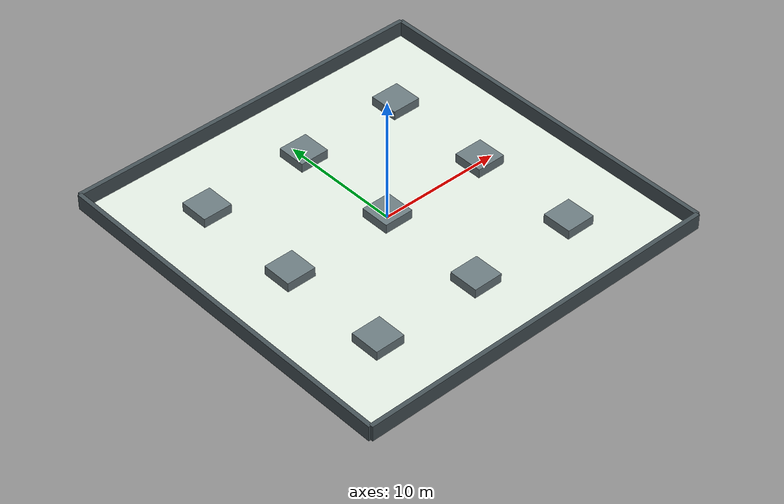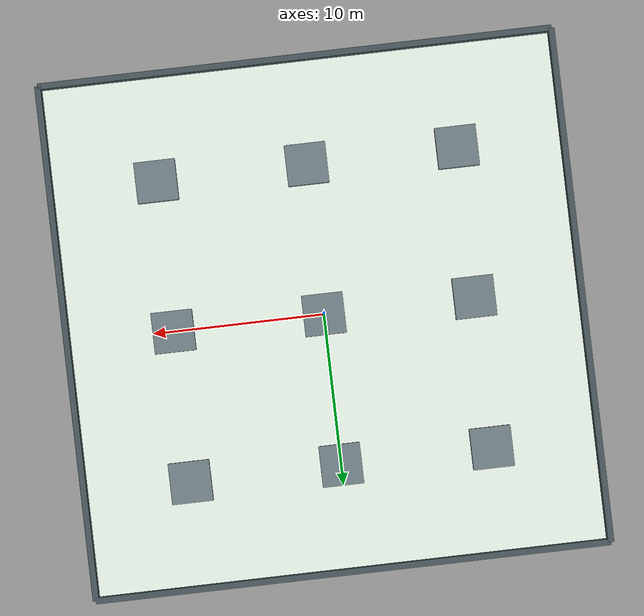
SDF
<?xml version="1.0" ?>
<sdf version="1.6">
  <world name="tb3_world">
    <gravity>0 0 -9.8</gravity>
    <scene>
      <ambient>0.65 0.65 0.65 1</ambient>
      <background>0.78 0.84 0.88 1</background>
    </scene>
    <include>
      <uri>model://sun</uri>
    </include>
    <model name="tb3_world_floor">
      <static>true</static>
      <pose>0.000 0.000 -0.025 0 0 0</pose>
      <link name="floor_link">
        <collision name="floor_collision">
          <geometry>
            <box><size>30.000 30.000 0.050</size></box>
          </geometry>
        </collision>
        <visual name="floor_visual">
          <geometry>
            <box><size>30.000 30.000 0.050</size></box>
          </geometry>
          <material><ambient>0.88 0.92 0.88 1</ambient><diffuse>0.88 0.92 0.88 1</diffuse></material>
        </visual>
      </link>
    </model>
    <model name="outer_north">
      <static>true</static>
      <pose>0.000 15.000 0.625 0 0 0</pose>
      <link name="outer_north_link">
        <collision name="outer_north_collision">
          <geometry>
            <box><size>30.000 0.350 1.250</size></box>
          </geometry>
        </collision>
        <visual name="outer_north_visual">
          <geometry>
            <box><size>30.000 0.350 1.250</size></box>
          </geometry>
          <material><ambient>0.27 0.32 0.34 1</ambient><diffuse>0.27 0.32 0.34 1</diffuse></material>
        </visual>
      </link>
    </model>
    <model name="outer_south">
      <static>true</static>
      <pose>0.000 -15.000 0.625 0 0 0</pose>
      <link name="outer_south_link">
        <collision name="outer_south_collision">
          <geometry>
            <box><size>30.000 0.350 1.250</size></box>
          </geometry>
        </collision>
        <visual name="outer_south_visual">
          <geometry>
            <box><size>30.000 0.350 1.250</size></box>
          </geometry>
          <material><ambient>0.27 0.32 0.34 1</ambient><diffuse>0.27 0.32 0.34 1</diffuse></material>
        </visual>
      </link>
    </model>
    <model name="outer_west">
      <static>true</static>
      <pose>-15.000 0.000 0.625 0 0 0</pose>
      <link name="outer_west_link">
        <collision name="outer_west_collision">
          <geometry>
            <box><size>0.350 30.000 1.250</size></box>
          </geometry>
        </collision>
        <visual name="outer_west_visual">
          <geometry>
            <box><size>0.350 30.000 1.250</size></box>
          </geometry>
          <material><ambient>0.27 0.32 0.34 1</ambient><diffuse>0.27 0.32 0.34 1</diffuse></material>
        </visual>
      </link>
    </model>
    <model name="outer_east">
      <static>true</static>
      <pose>15.000 0.000 0.625 0 0 0</pose>
      <link name="outer_east_link">
        <collision name="outer_east_collision">
          <geometry>
            <box><size>0.350 30.000 1.250</size></box>
          </geometry>
        </collision>
        <visual name="outer_east_visual">
          <geometry>
            <box><size>0.350 30.000 1.250</size></box>
          </geometry>
          <material><ambient>0.27 0.32 0.34 1</ambient><diffuse>0.27 0.32 0.34 1</diffuse></material>
        </visual>
      </link>
    </model>
    <model name="symbol_one_one">
      <static>true</static>
      <pose>-8.800 -8.800 0.375 0 0 0</pose>
      <link name="symbol_one_one_link">
        <collision name="symbol_one_one_collision">
          <geometry>
            <box><size>2.400 2.400 0.750</size></box>
          </geometry>
        </collision>
        <visual name="symbol_one_one_visual">
          <geometry>
            <box><size>2.400 2.400 0.750</size></box>
          </geometry>
          <material><ambient>0.42 0.48 0.50 1</ambient><diffuse>0.42 0.48 0.50 1</diffuse></material>
        </visual>
      </link>
    </model>
    <model name="symbol_one_two">
      <static>true</static>
      <pose>-8.800 0.000 0.375 0 0 0</pose>
      <link name="symbol_one_two_link">
        <collision name="symbol_one_two_collision">
          <geometry>
            <box><size>2.400 2.400 0.750</size></box>
          </geometry>
        </collision>
        <visual name="symbol_one_two_visual">
          <geometry>
            <box><size>2.400 2.400 0.750</size></box>
          </geometry>
          <material><ambient>0.42 0.48 0.50 1</ambient><diffuse>0.42 0.48 0.50 1</diffuse></material>
        </visual>
      </link>
    </model>
    <model name="symbol_one_three">
      <static>true</static>
      <pose>-8.800 8.800 0.375 0 0 0</pose>
      <link name="symbol_one_three_link">
        <collision name="symbol_one_three_collision">
          <geometry>
            <box><size>2.400 2.400 0.750</size></box>
          </geometry>
        </collision>
        <visual name="symbol_one_three_visual">
          <geometry>
            <box><size>2.400 2.400 0.750</size></box>
          </geometry>
          <material><ambient>0.42 0.48 0.50 1</ambient><diffuse>0.42 0.48 0.50 1</diffuse></material>
        </visual>
      </link>
    </model>
    <model name="symbol_two_one">
      <static>true</static>
      <pose>0.000 -8.800 0.375 0 0 0</pose>
      <link name="symbol_two_one_link">
        <collision name="symbol_two_one_collision">
          <geometry>
            <box><size>2.400 2.400 0.750</size></box>
          </geometry>
        </collision>
        <visual name="symbol_two_one_visual">
          <geometry>
            <box><size>2.400 2.400 0.750</size></box>
          </geometry>
          <material><ambient>0.42 0.48 0.50 1</ambient><diffuse>0.42 0.48 0.50 1</diffuse></material>
        </visual>
      </link>
    </model>
    <model name="symbol_two_two">
      <static>true</static>
      <pose>0.000 0.000 0.375 0 0 0</pose>
      <link name="symbol_two_two_link">
        <collision name="symbol_two_two_collision">
          <geometry>
            <box><size>2.400 2.400 0.750</size></box>
          </geometry>
        </collision>
        <visual name="symbol_two_two_visual">
          <geometry>
            <box><size>2.400 2.400 0.750</size></box>
          </geometry>
          <material><ambient>0.42 0.48 0.50 1</ambient><diffuse>0.42 0.48 0.50 1</diffuse></material>
        </visual>
      </link>
    </model>
    <model name="symbol_two_three">
      <static>true</static>
      <pose>0.000 8.800 0.375 0 0 0</pose>
      <link name="symbol_two_three_link">
        <collision name="symbol_two_three_collision">
          <geometry>
            <box><size>2.400 2.400 0.750</size></box>
          </geometry>
        </collision>
        <visual name="symbol_two_three_visual">
          <geometry>
            <box><size>2.400 2.400 0.750</size></box>
          </geometry>
          <material><ambient>0.42 0.48 0.50 1</ambient><diffuse>0.42 0.48 0.50 1</diffuse></material>
        </visual>
      </link>
    </model>
    <model name="symbol_three_one">
      <static>true</static>
      <pose>8.800 -8.800 0.375 0 0 0</pose>
      <link name="symbol_three_one_link">
        <collision name="symbol_three_one_collision">
          <geometry>
            <box><size>2.400 2.400 0.750</size></box>
          </geometry>
        </collision>
        <visual name="symbol_three_one_visual">
          <geometry>
            <box><size>2.400 2.400 0.750</size></box>
          </geometry>
          <material><ambient>0.42 0.48 0.50 1</ambient><diffuse>0.42 0.48 0.50 1</diffuse></material>
        </visual>
      </link>
    </model>
    <model name="symbol_three_two">
      <static>true</static>
      <pose>8.800 0.000 0.375 0 0 0</pose>
      <link name="symbol_three_two_link">
        <collision name="symbol_three_two_collision">
          <geometry>
            <box><size>2.400 2.400 0.750</size></box>
          </geometry>
        </collision>
        <visual name="symbol_three_two_visual">
          <geometry>
            <box><size>2.400 2.400 0.750</size></box>
          </geometry>
          <material><ambient>0.42 0.48 0.50 1</ambient><diffuse>0.42 0.48 0.50 1</diffuse></material>
        </visual>
      </link>
    </model>
    <model name="symbol_three_three">
      <static>true</static>
      <pose>8.800 8.800 0.375 0 0 0</pose>
      <link name="symbol_three_three_link">
        <collision name="symbol_three_three_collision">
          <geometry>
            <box><size>2.400 2.400 0.750</size></box>
          </geometry>
        </collision>
        <visual name="symbol_three_three_visual">
          <geometry>
            <box><size>2.400 2.400 0.750</size></box>
          </geometry>
          <material><ambient>0.42 0.48 0.50 1</ambient><diffuse>0.42 0.48 0.50 1</diffuse></material>
        </visual>
      </link>
    </model>
  </world>
</sdf>
